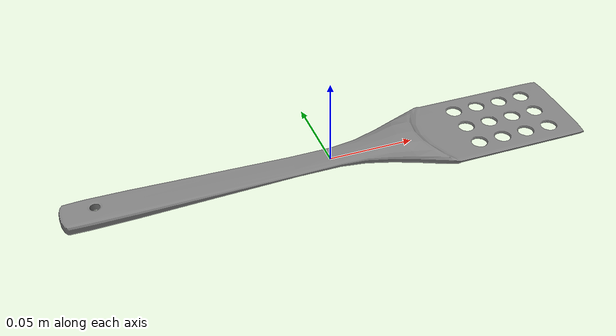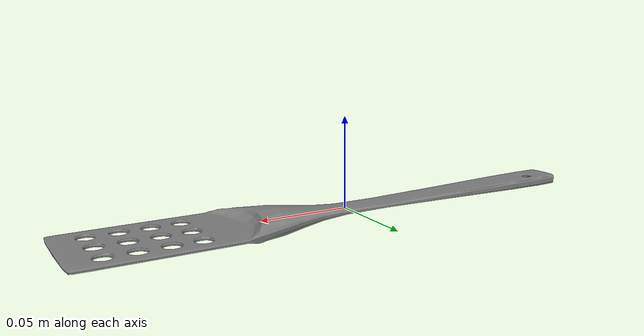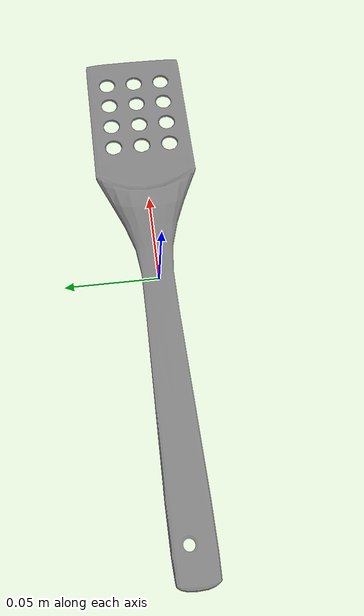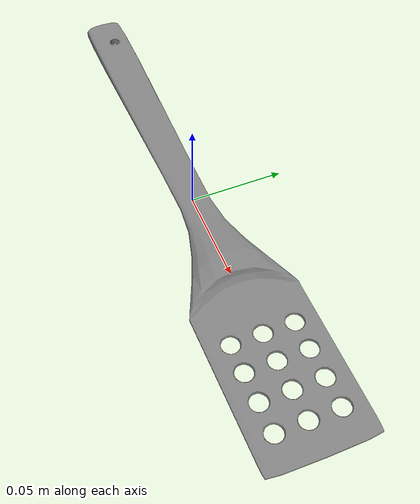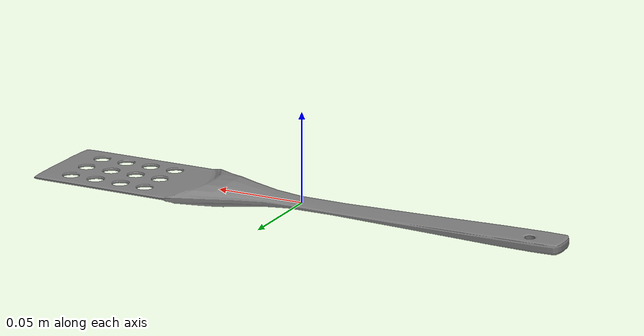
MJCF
<mujoco model="steel_spatula">
    <compiler angle="radian" meshdir="../meshes/" texturedir="../meshes/textures/" autolimits="true" inertiafromgeom="false"/>
    <asset>
        <mesh name="SteelSpatula" file="obj/SteelSpatula.obj" />
        <mesh name="UCX_SteelSpatula_001" file="stl/UCX_SteelSpatula_001.stl" />
		<mesh name="UCX_SteelSpatula_002" file="stl/UCX_SteelSpatula_002.stl" />
		<mesh name="UCX_SteelSpatula_003" file="stl/UCX_SteelSpatula_003.stl" />
		<mesh name="UCX_SteelSpatula_004" file="stl/UCX_SteelSpatula_004.stl" />
		<mesh name="UCX_SteelSpatula_005" file="stl/UCX_SteelSpatula_005.stl" />
		<mesh name="UCX_SteelSpatula_006" file="stl/UCX_SteelSpatula_006.stl" />
		<mesh name="UCX_SteelSpatula_007" file="stl/UCX_SteelSpatula_007.stl" />
		<mesh name="UCX_SteelSpatula_008" file="stl/UCX_SteelSpatula_008.stl" />
		<mesh name="UCX_SteelSpatula_009" file="stl/UCX_SteelSpatula_009.stl" />
		<mesh name="UCX_SteelSpatula_010" file="stl/UCX_SteelSpatula_010.stl" />
		<mesh name="UCX_SteelSpatula_011" file="stl/UCX_SteelSpatula_011.stl" />
		<mesh name="UCX_SteelSpatula_012" file="stl/UCX_SteelSpatula_012.stl" />
		<mesh name="UCX_SteelSpatula_013" file="stl/UCX_SteelSpatula_013.stl" />
		<mesh name="UCX_SteelSpatula_014" file="stl/UCX_SteelSpatula_014.stl" />
		<mesh name="UCX_SteelSpatula_015" file="stl/UCX_SteelSpatula_015.stl" />
		<mesh name="UCX_SteelSpatula_016" file="stl/UCX_SteelSpatula_016.stl" />
		<mesh name="UCX_SteelSpatula_017" file="stl/UCX_SteelSpatula_017.stl" />
		<mesh name="UCX_SteelSpatula_018" file="stl/UCX_SteelSpatula_018.stl" />
		<mesh name="UCX_SteelSpatula_019" file="stl/UCX_SteelSpatula_019.stl" />
		<mesh name="UCX_SteelSpatula_020" file="stl/UCX_SteelSpatula_020.stl" />
		<mesh name="UCX_SteelSpatula_021" file="stl/UCX_SteelSpatula_021.stl" />
		<mesh name="UCX_SteelSpatula_022" file="stl/UCX_SteelSpatula_022.stl" />
		<mesh name="UCX_SteelSpatula_023" file="stl/UCX_SteelSpatula_023.stl" />
		<mesh name="UCX_SteelSpatula_024" file="stl/UCX_SteelSpatula_024.stl" />
		<mesh name="UCX_SteelSpatula_025" file="stl/UCX_SteelSpatula_025.stl" />
		<mesh name="UCX_SteelSpatula_026" file="stl/UCX_SteelSpatula_026.stl" />
		<mesh name="UCX_SteelSpatula_027" file="stl/UCX_SteelSpatula_027.stl" />
    </asset>
    <default>
        <default class="steel_spatula_visual">
            <geom contype="0" conaffinity="0" />
        </default>
        <default class="steel_spatula_collision">
            <geom rgba="0.9 0.9 0.9 0.0" />
        </default>
    </default>
    <worldbody>
        <body name="steel_spatula">
            <freejoint />
            <inertial mass="0.03007379360496998" pos="0.00839743297547102 0.0003778332902584225 1.9343238818692043e-05" quat="0.9999998211860657 3.597878458094783e-05 -1.1929783795494586e-05 0.0005945469602011144" diaginertia="3.5286443562654313e-06 0.0002174500550609082 0.00022077861649449915"/>
            <geom name="SteelSpatula" pos="0.0 0.0 0.0" quat="1.0 0.0 0.0 0.0" type="mesh" mesh="SteelSpatula" class="steel_spatula_visual" />
            <geom name="UCX_SteelSpatula_001" type="mesh" pos="0.0 0.0 0.0" quat="1.0 0.0 0.0 0.0" mesh="UCX_SteelSpatula_001" class="steel_spatula_collision"/>
            <geom name="UCX_SteelSpatula_002" type="mesh" pos="0.0 0.0 0.0" quat="1.0 0.0 0.0 0.0" mesh="UCX_SteelSpatula_002" class="steel_spatula_collision"/>
            <geom name="UCX_SteelSpatula_003" type="mesh" pos="0.0 0.0 0.0" quat="1.0 0.0 0.0 0.0" mesh="UCX_SteelSpatula_003" class="steel_spatula_collision"/>
            <geom name="UCX_SteelSpatula_004" type="mesh" pos="0.0 0.0 0.0" quat="1.0 0.0 0.0 0.0" mesh="UCX_SteelSpatula_004" class="steel_spatula_collision"/>
            <geom name="UCX_SteelSpatula_005" type="mesh" pos="0.0 0.0 0.0" quat="1.0 0.0 0.0 0.0" mesh="UCX_SteelSpatula_005" class="steel_spatula_collision"/>
            <geom name="UCX_SteelSpatula_006" type="mesh" pos="0.0 0.0 0.0" quat="1.0 0.0 0.0 0.0" mesh="UCX_SteelSpatula_006" class="steel_spatula_collision"/>
            <geom name="UCX_SteelSpatula_007" type="mesh" pos="0.0 0.0 0.0" quat="1.0 0.0 0.0 0.0" mesh="UCX_SteelSpatula_007" class="steel_spatula_collision"/>
            <geom name="UCX_SteelSpatula_008" type="mesh" pos="0.0 0.0 0.0" quat="1.0 0.0 0.0 0.0" mesh="UCX_SteelSpatula_008" class="steel_spatula_collision"/>
            <geom name="UCX_SteelSpatula_009" type="mesh" pos="0.0 0.0 0.0" quat="1.0 0.0 0.0 0.0" mesh="UCX_SteelSpatula_009" class="steel_spatula_collision"/>
            <geom name="UCX_SteelSpatula_010" type="mesh" pos="0.0 0.0 0.0" quat="1.0 0.0 0.0 0.0" mesh="UCX_SteelSpatula_010" class="steel_spatula_collision"/>
            <geom name="UCX_SteelSpatula_011" type="mesh" pos="0.0 0.0 0.0" quat="1.0 0.0 0.0 0.0" mesh="UCX_SteelSpatula_011" class="steel_spatula_collision"/>
            <geom name="UCX_SteelSpatula_012" type="mesh" pos="0.0 0.0 0.0" quat="1.0 0.0 0.0 0.0" mesh="UCX_SteelSpatula_012" class="steel_spatula_collision"/>
            <geom name="UCX_SteelSpatula_013" type="mesh" pos="0.0 0.0 0.0" quat="1.0 0.0 0.0 0.0" mesh="UCX_SteelSpatula_013" class="steel_spatula_collision"/>
            <geom name="UCX_SteelSpatula_014" type="mesh" pos="0.0 0.0 0.0" quat="1.0 0.0 0.0 0.0" mesh="UCX_SteelSpatula_014" class="steel_spatula_collision"/>
            <geom name="UCX_SteelSpatula_015" type="mesh" pos="0.0 0.0 0.0" quat="1.0 0.0 0.0 0.0" mesh="UCX_SteelSpatula_015" class="steel_spatula_collision"/>
            <geom name="UCX_SteelSpatula_016" type="mesh" pos="0.0 0.0 0.0" quat="1.0 0.0 0.0 0.0" mesh="UCX_SteelSpatula_016" class="steel_spatula_collision"/>
            <geom name="UCX_SteelSpatula_017" type="mesh" pos="0.0 0.0 0.0" quat="1.0 0.0 0.0 0.0" mesh="UCX_SteelSpatula_017" class="steel_spatula_collision"/>
            <geom name="UCX_SteelSpatula_018" type="mesh" pos="0.0 0.0 0.0" quat="1.0 0.0 0.0 0.0" mesh="UCX_SteelSpatula_018" class="steel_spatula_collision"/>
            <geom name="UCX_SteelSpatula_019" type="mesh" pos="0.0 0.0 0.0" quat="1.0 0.0 0.0 0.0" mesh="UCX_SteelSpatula_019" class="steel_spatula_collision"/>
            <geom name="UCX_SteelSpatula_020" type="mesh" pos="0.0 0.0 0.0" quat="1.0 0.0 0.0 0.0" mesh="UCX_SteelSpatula_020" class="steel_spatula_collision"/>
            <geom name="UCX_SteelSpatula_021" type="mesh" pos="0.0 0.0 0.0" quat="1.0 0.0 0.0 0.0" mesh="UCX_SteelSpatula_021" class="steel_spatula_collision"/>
            <geom name="UCX_SteelSpatula_022" type="mesh" pos="0.0 0.0 0.0" quat="1.0 0.0 0.0 0.0" mesh="UCX_SteelSpatula_022" class="steel_spatula_collision"/>
            <geom name="UCX_SteelSpatula_023" type="mesh" pos="0.0 0.0 0.0" quat="1.0 0.0 0.0 0.0" mesh="UCX_SteelSpatula_023" class="steel_spatula_collision"/>
            <geom name="UCX_SteelSpatula_024" type="mesh" pos="0.0 0.0 0.0" quat="1.0 0.0 0.0 0.0" mesh="UCX_SteelSpatula_024" class="steel_spatula_collision"/>
            <geom name="UCX_SteelSpatula_025" type="mesh" pos="0.0 0.0 0.0" quat="1.0 0.0 0.0 0.0" mesh="UCX_SteelSpatula_025" class="steel_spatula_collision"/>
            <geom name="UCX_SteelSpatula_026" type="mesh" pos="0.0 0.0 0.0" quat="1.0 0.0 0.0 0.0" mesh="UCX_SteelSpatula_026" class="steel_spatula_collision"/>
            <geom name="UCX_SteelSpatula_027" type="mesh" pos="0.0 0.0 0.0" quat="1.0 0.0 0.0 0.0" mesh="UCX_SteelSpatula_027" class="steel_spatula_collision"/>
        </body>
    </worldbody>
    <equality />
    <contact />
</mujoco>
